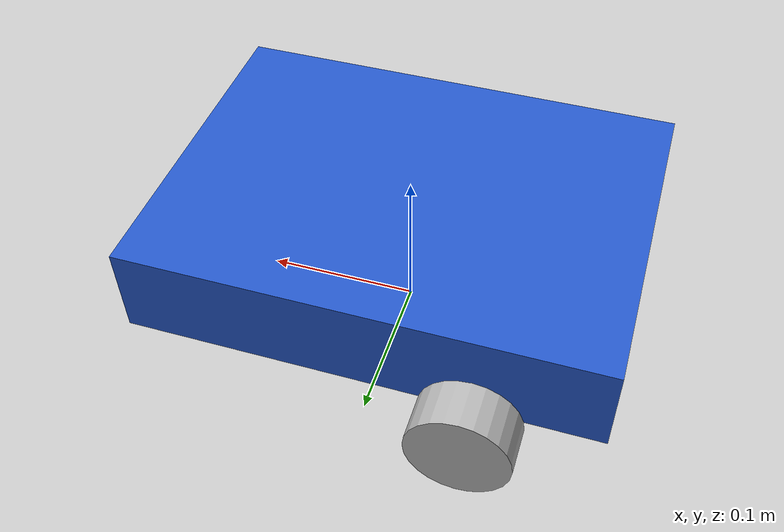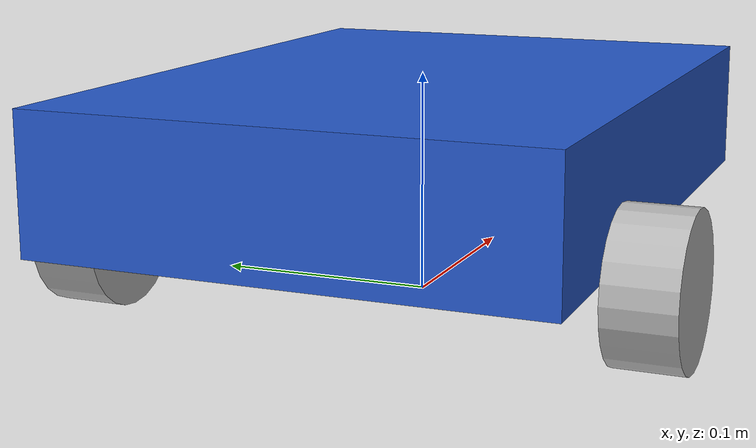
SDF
<?xml version="1.0"?>
<sdf version="1.10">

  <model name="amr" canonical_link="base_link">

    <!--
      PROTOTYPE SIMULATION MODEL
      Wheel radius 0.0325 m comes from the planned 65 mm wheels.
      Chassis dimensions / masses / wheel separation are temporary.
    -->

    <!-- ================= BASE ================= -->

    <link name="base_link">
            <!-- ================= 2D LIDAR ================= -->

      <sensor name="lidar" type="gpu_lidar">

        <!-- Temporary lidar mounting position -->
        <pose relative_to="base_link">0.18 0 0.15 0 0 0</pose>

        <topic>/scan</topic>

        <!-- ROS / TF friendly frame name -->
        <gz_frame_id>laser_link</gz_frame_id>

        <update_rate>10</update_rate>

        <lidar>

          <scan>

            <horizontal>
              <samples>360</samples>
              <resolution>1</resolution>

              <!-- 360 degrees -->
              <min_angle>-3.14159265</min_angle>
              <max_angle>3.14159265</max_angle>
            </horizontal>

            <vertical>
              <samples>1</samples>
              <resolution>1</resolution>
              <min_angle>0</min_angle>
              <max_angle>0</max_angle>
            </vertical>

          </scan>

          <range>
            <min>0.10</min>
            <max>8.0</max>
            <resolution>0.01</resolution>
          </range>

        </lidar>

        <always_on>true</always_on>

        <!-- Required for GPU LiDAR rendering in headless Gazebo -->
        <visualize>true</visualize>

      </sensor>
      <pose relative_to="__model__">
        0 0 0.07 0 0 0
      </pose>

      <inertial>
        <mass>2.0</mass>

        <inertia>
          <ixx>0.00867</ixx>
          <iyy>0.01560</iyy>
          <izz>0.02307</izz>

          <ixy>0</ixy>
          <ixz>0</ixz>
          <iyz>0</iyz>
        </inertia>
      </inertial>

      <visual name="base_visual">
        <geometry>
          <box>
            <size>0.30 0.22 0.06</size>
          </box>
        </geometry>

        <material>
          <ambient>0.15 0.35 0.80 1</ambient>
          <diffuse>0.15 0.35 0.80 1</diffuse>
        </material>
      </visual>

      <collision name="base_collision">
        <geometry>
          <box>
            <size>0.30 0.22 0.06</size>
          </box>
        </geometry>
      </collision>

    </link>

    <!-- ================= LEFT WHEEL ================= -->

    <link name="left_wheel">

      <pose relative_to="__model__">
        -0.07 0.125 0.0325 1.5708 0 0
      </pose>

      <inertial>
        <mass>0.2</mass>

        <inertia>
          <ixx>0.0000678</ixx>
          <iyy>0.0001056</iyy>
          <izz>0.0000678</izz>

          <ixy>0</ixy>
          <ixz>0</ixz>
          <iyz>0</iyz>
        </inertia>
      </inertial>

      <visual name="visual">
        <geometry>
          <cylinder>
            <radius>0.0325</radius>
            <length>0.03</length>
          </cylinder>
        </geometry>
      </visual>

      <collision name="collision">
        <geometry>
          <cylinder>
            <radius>0.0325</radius>
            <length>0.03</length>
          </cylinder>
        </geometry>

        <surface>
          <friction>
            <ode>
              <mu>1.0</mu>
              <mu2>1.0</mu2>
            </ode>
          </friction>
        </surface>
      </collision>

    </link>

    <!-- ================= RIGHT WHEEL ================= -->

    <link name="right_wheel">

      <pose relative_to="__model__">
        -0.07 -0.125 0.0325 1.5708 0 0
      </pose>

      <inertial>
        <mass>0.2</mass>

        <inertia>
          <ixx>0.0000678</ixx>
          <iyy>0.0001056</iyy>
          <izz>0.0000678</izz>

          <ixy>0</ixy>
          <ixz>0</ixz>
          <iyz>0</iyz>
        </inertia>
      </inertial>

      <visual name="visual">
        <geometry>
          <cylinder>
            <radius>0.0325</radius>
            <length>0.03</length>
          </cylinder>
        </geometry>
      </visual>

      <collision name="collision">
        <geometry>
          <cylinder>
            <radius>0.0325</radius>
            <length>0.03</length>
          </cylinder>
        </geometry>

        <surface>
          <friction>
            <ode>
              <mu>1.0</mu>
              <mu2>1.0</mu2>
            </ode>
          </friction>
        </surface>
      </collision>

    </link>

    <!-- ================= CASTER ================= -->

    <link name="caster">

      <pose relative_to="__model__">
        0.12 0 0.02 0 0 0
      </pose>

      <inertial>
        <mass>0.05</mass>

        <inertia>
          <ixx>0.000008</ixx>
          <iyy>0.000008</iyy>
          <izz>0.000008</izz>

          <ixy>0</ixy>
          <ixz>0</ixz>
          <iyz>0</iyz>
        </inertia>
      </inertial>

      <visual name="visual">
        <geometry>
          <sphere>
            <radius>0.02</radius>
          </sphere>
        </geometry>
      </visual>

      <collision name="collision">
        <geometry>
          <sphere>
            <radius>0.02</radius>
          </sphere>
        </geometry>
      </collision>

    </link>

    <!-- ================= JOINTS ================= -->

    <joint name="left_wheel_joint" type="revolute">

      <parent>base_link</parent>
      <child>left_wheel</child>

      <axis>
        <xyz expressed_in="__model__">0 1 0</xyz>

        <limit>
          <lower>-1.79769e+308</lower>
          <upper>1.79769e+308</upper>
        </limit>
      </axis>

    </joint>

    <joint name="right_wheel_joint" type="revolute">

      <parent>base_link</parent>
      <child>right_wheel</child>

      <axis>
        <xyz expressed_in="__model__">0 1 0</xyz>

        <limit>
          <lower>-1.79769e+308</lower>
          <upper>1.79769e+308</upper>
        </limit>
      </axis>

    </joint>

    <joint name="caster_joint" type="ball">

      <parent>base_link</parent>
      <child>caster</child>

    </joint>

    <!-- ================= DIFFERENTIAL DRIVE ================= -->

    <plugin
      filename="gz-sim-diff-drive-system"
      name="gz::sim::systems::DiffDrive">

      <left_joint>left_wheel_joint</left_joint>
      <right_joint>right_wheel_joint</right_joint>

      <!-- temporary prototype wheel track -->
      <wheel_separation>0.25</wheel_separation>

      <!-- 65 mm diameter wheel -->
      <wheel_radius>0.0325</wheel_radius>

      <topic>/cmd_vel</topic>

      <odom_topic>/odom</odom_topic>

      <tf_topic>/tf</tf_topic>

      <frame_id>odom</frame_id>

      <child_frame_id>base_link</child_frame_id>

    </plugin>

  </model>

</sdf>
